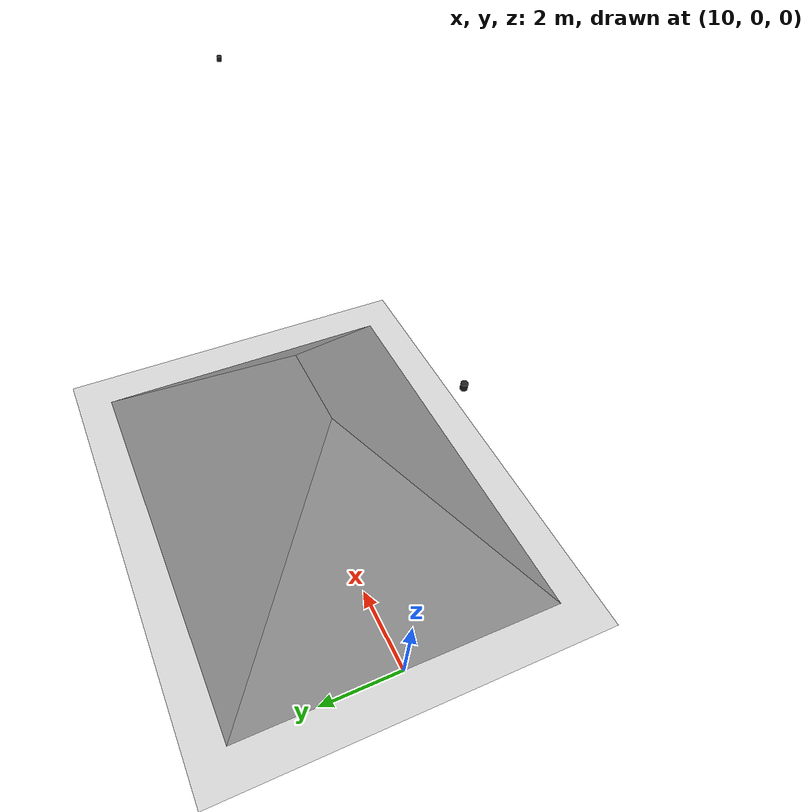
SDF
<?xml version="1.0" ?>
<sdf version='1.7'>
  <world name='default'>
    <!-- To add realistic gravity, do: 0.0 0.0 -9.8, otherwise do 0.0 0.0 0.0 -->
    <gravity>0.0 0.0 -9.8</gravity>
    <light name='sun' type='directional'>
      <cast_shadows>1</cast_shadows>
      <pose>0 0 10 0 -0 0</pose>
      <diffuse>0.8 0.8 0.8 1</diffuse>
      <specular>0.2 0.2 0.2 1</specular>
      <attenuation>
        <range>1000</range>
        <constant>0.9</constant>
        <linear>0.01</linear>
        <quadratic>0.001</quadratic>
      </attenuation>
      <direction>-0.5 0.1 -0.9</direction>
      <spot>
        <inner_angle>0</inner_angle>
        <outer_angle>0</outer_angle>
        <falloff>0</falloff>
      </spot>
    </light>
    <model name='ground_plane'>
      <static>1</static>
      <link name='link'>
        <collision name='collision'>
          <geometry>
            <plane>
              <normal>0 0 1</normal>
              <size>100 100</size>
            </plane>
          </geometry>
          <surface>
            <friction>
              <ode>
                <mu>100</mu>
                <mu2>50</mu2>
              </ode>
              <torsional>
                <ode/>
              </torsional>
            </friction>
            <contact>
              <ode/>
            </contact>
            <bounce/>
          </surface>
          <max_contacts>10</max_contacts>
        </collision>
        <visual name='visual'>
          <cast_shadows>0</cast_shadows>
          <geometry>
            <plane>
              <normal>0 0 1</normal>
              <size>100 100</size>
            </plane>
          </geometry>
          <material>
            <script>
              <uri>file://media/materials/scripts/gazebo.material</uri>
              <name>Gazebo/Grey</name>
            </script>
          </material>
        </visual>
        <self_collide>0</self_collide>
        <enable_wind>0</enable_wind>
        <kinematic>0</kinematic>
      </link>
    </model>
    <model name="pile">
      <static>1</static>
      <pose>20.0 0 0 0 0 0</pose>
      <link name='pile'>
        <visual name='pile_visual'>
          <cast_shadows>0</cast_shadows>
          <geometry>
            <mesh>
              <uri>/home/ponwalai/fibo-technovation/loader_sim_pkg/src/meshes/pile_test_45deg.STL</uri>
            </mesh>
          </geometry>
          <material>
            <script>
              <uri>file://media/materials/scripts/gazebo.material</uri>
              <name>Gazebo/Grey</name>
            </script>
          </material>
        </visual>
        <collision name='pile_collision'>
          <geometry>
            <mesh>
              <uri>file:///home/ponwalai/fibo-technovation/loader_sim_pkg/src/meshes/pile_test_45deg.STL</uri>
            </mesh>
          </geometry>
          <surface>
            <contact>
              <collide_bitmask>0x00</collide_bitmask>
            </contact>
          </surface>
        </collision>
        <self_collide>0</self_collide>
        <enable_wind>0</enable_wind>
        <kinematic>0</kinematic>
      </link>
    </model>

    <model name='static_3d_lidar'>
      <static>true</static>
      <pose>10.0 0 9.0 3.1412 0 0</pose>
      <link name='link'>
        <visual name='visual'>
          <geometry><cylinder><radius>0.05</radius><length>0.1</length></cylinder></geometry>
          <material><script><name>Gazebo/Black</name></script></material>
        </visual>

        <sensor name='lidar_3d' type='ray'>
          <always_on>1</always_on>
          <update_rate>10</update_rate>
          <visualize>false</visualize> <ray>
            <scan>
              <horizontal>
                <samples>360</samples>
                <resolution>1</resolution>
                <min_angle>-3.14159</min_angle>
                <max_angle>3.14159</max_angle>
              </horizontal>
              <vertical>
                <samples>16</samples> <resolution>1</resolution>
                <min_angle>0</min_angle> <max_angle>1.57</max_angle>  </vertical>
            </scan>
            <range>
              <min>0.3</min>
              <max>50.0</max>
              <resolution>0.01</resolution>
            </range>
          </ray>

          <plugin name='gazebo_ros_ray_sensor' filename='libgazebo_ros_ray_sensor.so'>
            <ros>
              <namespace>/lidar</namespace>
              <remapping>~/out:=/pointcloud</remapping>
            </ros>
            <output_type>sensor_msgs/PointCloud2</output_type>
            <frame_name>map</frame_name> </plugin>
        </sensor>
      </link>
    </model>

    <model name='static_3d_lidar2'>
      <static>true</static>
      <pose>20.0 0 9.0 3.1412 0 0</pose>
      <link name='link'>
        <visual name='visual'>
          <geometry><cylinder><radius>0.05</radius><length>0.1</length></cylinder></geometry>
          <material><script><name>Gazebo/Black</name></script></material>
        </visual>

        <sensor name='lidar_3d' type='ray'>
          <always_on>1</always_on>
          <update_rate>10</update_rate>
          <visualize>false</visualize> <ray>
            <scan>
              <horizontal>
                <samples>360</samples>
                <resolution>1</resolution>
                <min_angle>-3.14159</min_angle>
                <max_angle>3.14159</max_angle>
              </horizontal>
              <vertical>
                <samples>16</samples> <resolution>1</resolution>
                <min_angle>0</min_angle> <max_angle>1.57</max_angle>  </vertical>
            </scan>
            <range>
              <min>0.3</min>
              <max>50.0</max>
              <resolution>0.01</resolution>
            </range>
          </ray>

          <plugin name='gazebo_ros_ray_sensor2' filename='libgazebo_ros_ray_sensor.so'>
            <ros>
              <namespace>/lidar</namespace>
              <remapping>~/out:=/pointcloud2</remapping>
            </ros>
            <output_type>sensor_msgs/PointCloud2</output_type>
            <frame_name>map</frame_name> </plugin>
        </sensor>
      </link>
    </model>

    <plugin name="gazebo_ros_state" filename="libgazebo_ros_state.so">
      <ros>
        <namespace>/gazebo</namespace>
      </ros>
      <update_rate>100.0</update_rate>
    </plugin>
  </world>
</sdf>
